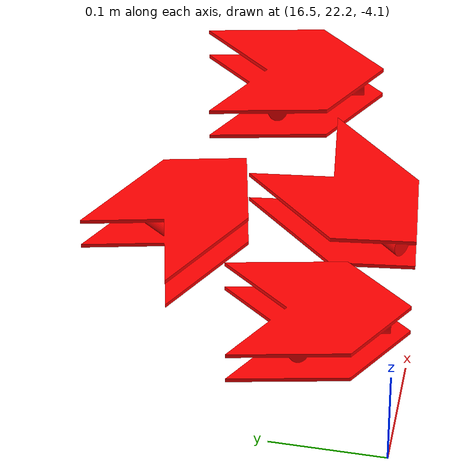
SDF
<sdf version="1.11">
 <world name="robosub_2023_pool">
  <scene>
   <ambient>0.01 0.01 0.01 1.0</ambient>
   <sky><clouds><speed>12</speed></clouds></sky>
   <shadows>1</shadows>
  </scene>
  <physics name="default_physics" default="true" type="ode">
   <max_step_size>0.002</max_step_size>
   <real_time_factor>1</real_time_factor>
   <real_time_update_rate>0</real_time_update_rate>
   <ode><solver><type>quick</type><iters>50</iters><sor>0.5</sor></solver></ode>
  </physics>
  <plugin filename="gz-sim-physics-system" name="gz::sim::systems::Physics"/>
  <plugin filename="gz-sim-user-commands-system" name="gz::sim::systems::UserCommands"/>
  <plugin filename="gz-sim-sensors-system" name="gz::sim::systems::Sensors">
   <render_engine>ogre2</render_engine>
   <disable_on_drained_battery>true</disable_on_drained_battery>
  </plugin>
  <plugin filename="gz-sim-imu-system" name="gz::sim::systems::Imu"/>
  <plugin filename="gz-sim-magnetometer-system" name="gz::sim::systems::Magnetometer"/>
  <plugin filename="gz-sim-forcetorque-system" name="gz::sim::systems::ForceTorque"/>
  <plugin filename="gz-sim-particle-emitter-system" name="gz::sim::systems::ParticleEmitter"/>
  <plugin filename="gz-sim-scene-broadcaster-system" name="gz::sim::systems::SceneBroadcaster"/>
  <plugin filename="gz-sim-contact-system" name="gz::sim::systems::Contact"/>
  <plugin filename="gz-sim-navsat-system" name="gz::sim::systems::NavSat"/>
  <scene>
   <ambient>0.1 0.3 0.3 1.0</ambient>
   <sky><time>12</time><clouds><speed>12</speed></clouds></sky>
   <background>0.7 0.7 0.7 1.0</background>
   <shadows>1</shadows>
   <grid>0</grid>
  </scene>
  <spherical_coordinates>
   <surface_model>EARTH_WGS84</surface_model>
   <world_frame_orientation>ENU</world_frame_orientation>
   <latitude_deg>32.703406</latitude_deg>
   <longitude_deg>-117.250311</longitude_deg>
   <elevation>0.0</elevation>
   <heading_deg>0.0</heading_deg>
  </spherical_coordinates>
  <light type="directional" name="sun1">
   <cast_shadows>false</cast_shadows>
   <pose>-20 -20 20 0 0 0</pose>
   <diffuse>0.2 0.2 0.8 1</diffuse>
   <specular>0 0 0.3 1</specular>
   <attenuation>
    <range>1000</range>
    <constant>0.9</constant>
    <linear>0.01</linear>
    <quadratic>0.001</quadratic>
   </attenuation>
   <direction>-0.0 0.1 -0.9</direction>
  </light>
  <include>
   <name>cover_1</name>
   <uri>model://robosub_bin_cover</uri>
   <pose>28.350399 0.110008 -3.615128 0 0 0</pose>
  </include>
  <include>
   <name>cover_2</name>
   <uri>model://robosub_bin_cover</uri>
   <pose>27.687332 0.210735 -3.632456 0 0 0</pose>
  </include>
  <include>
   <name>chevron_1</name>
   <uri>model://robosub23_chevron</uri>
   <pose>16.700669 22.267581 -4.01600 3.141593 0 -2.238332</pose>
  </include>
  <include>
   <name>chevron_2</name>
   <uri>model://robosub23_chevron</uri>
   <pose>16.690139 22.411735 -4.05019 0 0 -0.582008</pose>
  </include>
  <include>
   <name>chevron_3</name>
   <uri>model://robosub23_chevron</uri>
   <pose>16.560148 22.277356 -4.01600 3.141593 0 -1.381260</pose>
  </include>
  <include>
   <name>chevron_4</name>
   <uri>model://robosub23_chevron</uri>
   <pose>16.834141 22.342808 -4.01600 3.141593 0 -1.381260</pose>
  </include>
  <plugin filename="gz-sim-buoyancy-system" name="gz::sim::systems::Buoyancy">
   <graded_buoyancy>
    <default_density>1000</default_density>
    <density_change><above_depth>0</above_depth><density>1</density></density_change>
   </graded_buoyancy>
  </plugin>
  <plugin filename="gz-sim-dvl-system" name="gz::sim::systems::DopplerVelocityLogSystem"/>
  <plugin filename="dave_ros_gz_plugins/libDVLBridge.so" name="dave_ros_gz_plugins::DVLBridge"/>
 </world>
</sdf>

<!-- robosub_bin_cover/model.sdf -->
<sdf version="1.11">  <model name="robosub_bin_cover">
    <link name="cover">
      <inertial>
        <mass>0.1</mass>
        <inertia>
          <ixx>0.0004</ixx>
          <ixy>0</ixy>
          <ixz>0</ixz>
          <iyy>0.001</iyy>
          <iyz>0</iyz>
          <izz>0.001</izz>
        </inertia>
      </inertial>

      <visual name="top">
        <pose>0 0 0.02 0 0 0</pose>
        <geometry>
          <box>
            <size>0.3556 0.2032 0.02</size>
          </box>
        </geometry>
        <material>
          <script>
            <uri>file://media/materials/scripts/gazebo.material</uri>
            <name>Gazebo/Orange</name>
          </script>
        </material>
      </visual>

      <collision name="top_collide">
        <pose>0 0 0.02 0 0 0</pose>
        <geometry>
          <box>
            <size>0.3556 0.2032 0.02</size>
          </box>
        </geometry>
      </collision>

      <visual name="htop">
        <pose>0 0 0.1016 1.5707 0 1.5707</pose>
        <geometry>
          <cylinder>
            <radius>0.00635</radius>
            <length>0.2032</length>
          </cylinder>
        </geometry>
        <material>
          <script>
            <uri>file://media/materials/scripts/gazebo.material</uri>
            <name>Gazebo/Purple</name>
          </script>
        </material>
      </visual>

      <collision name="htop_collide">
        <pose>0 0 0.1016 1.5707 0 1.5707</pose>
        <geometry>
          <cylinder>
            <radius>0.00635</radius>
            <length>0.2032</length>
          </cylinder>
        </geometry>
      </collision>

      <visual name="u1">
        <pose>0.1016 0 0.0508 0 0 0</pose>
        <geometry>
          <cylinder>
            <radius>0.00635</radius>
            <length>0.1016</length>
          </cylinder>
        </geometry>
        <material>
          <script>
            <uri>file://media/materials/scripts/gazebo.material</uri>
            <name>Gazebo/Purple</name>
          </script>
        </material>
      </visual>

      <collision name="u1_collide">
        <pose>0.1016 0 0.0508 0 0 0</pose>
        <geometry>
          <cylinder>
            <radius>0.00635</radius>
            <length>0.1016</length>
          </cylinder>
        </geometry>
      </collision>

      <visual name="u2">
        <pose>-0.1016 0 0.0508 0 0 0</pose>
        <geometry>
          <cylinder>
            <radius>0.00635</radius>
            <length>0.1016</length>
          </cylinder>
        </geometry>
        <material>
          <script>
            <uri>file://media/materials/scripts/gazebo.material</uri>
            <name>Gazebo/Purple</name>
          </script>
        </material>
      </visual>

      <collision name="u2_collide">
        <pose>-0.1016 0 0.0508 0 0 0</pose>
        <geometry>
          <cylinder>
            <radius>0.00635</radius>
            <length>0.1016</length>
          </cylinder>
        </geometry>
      </collision>
    </link>
  </model>
</sdf>

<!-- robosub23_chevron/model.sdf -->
<sdf version="1.11">  <model name="robosub23_chevron">
    <link name="chevron">
      <inertial>
        <pose>0 0 0 0 0 0</pose>
        <mass>0.1</mass>
        <inertia>
          <ixx>0.0004</ixx>
          <ixy>0</ixy>
          <ixz>0</ixz>
          <iyy>0.001</iyy>
          <iyz>0</iyz>
          <izz>0.001</izz>
        </inertia>
      </inertial>

      <visual name="chevron_visual">
        <pose>0 0 0 0 0 0</pose>
        <geometry>
          <mesh>
            <scale>1 1 1</scale>
            <uri>model://robosub23_chevron/chevron.stl</uri>
          </mesh>
        </geometry>
        <material>
          <ambient>1 0 0</ambient>
          <diffuse>1 0 0</diffuse>
          <specular>0.1 0.1 0.1 1</specular>
        </material>
      </visual>

      <collision name="chevron_collision">
        <pose>0 0 0 0 0 0</pose>
        <geometry>
          <mesh>
            <scale>1 1 1</scale>
            <uri>model://robosub23_chevron/chevron.stl</uri>
          </mesh>
        </geometry>
      </collision>
    </link>
  </model>
</sdf>
